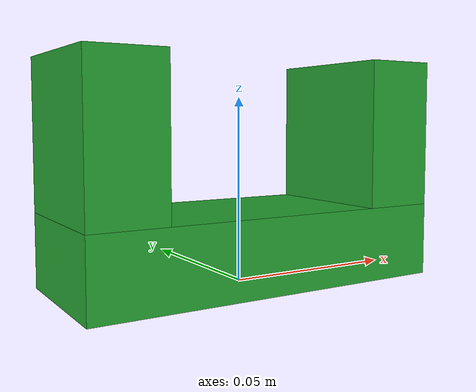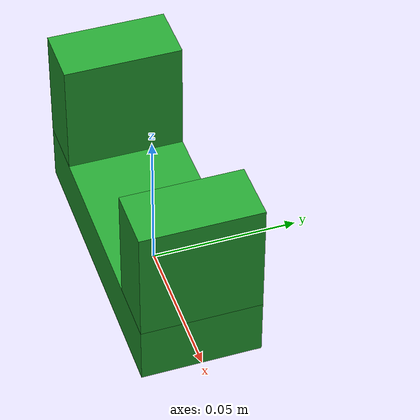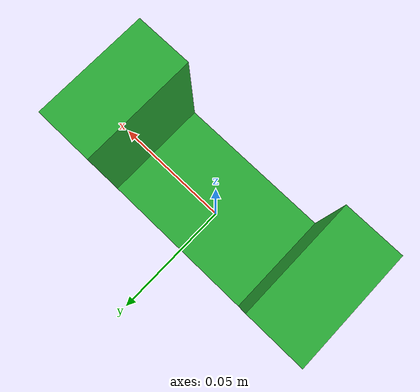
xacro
<?xml version="1.0"?>
<robot xmlns:xacro="http://www.ros.org/wiki/xacro">

    <link name="gripper_base_link">
        <visual>
            <geometry>
                <box size="0.1 0.04 0.02"/>
            </geometry>
            <origin xyz="0 0 0.01" rpy="0 0 0"/>
            <material name="dark_green"/>
        </visual>
        <collision>
            <geometry>
                <box size="0.1 0.04 0.02"/>
            </geometry>
            <origin xyz="0 0 0.01" rpy="0 0 0"/>
            <material name="dark_green"/>
        </collision>
    </link>
    <link name="gripper_left_finger_link">
        <visual>
            <geometry>
                <box size="0.02 0.04 0.04"/>
            </geometry>
            <origin xyz="0 0 0.02" rpy="0 0 0"/>
            <material name="dark_green"/>
        </visual>
       <collision>
            <geometry>
                <box size="0.02 0.04 0.04"/>
            </geometry>
            <origin xyz="0 0 0.02" rpy="0 0 0"/>
            <material name="dark_green"/>
        </collision>
    </link>
    <link name="gripper_right_finger_link">
        <visual>
            <geometry>
                <box size="0.02 0.04 0.04"/>
            </geometry>
            <origin xyz="0 0 0.02" rpy="0 0 0"/>
            <material name="dark_green"/>
        </visual>
       <collision>
            <geometry>
                <box size="0.02 0.04 0.04"/>
            </geometry>
            <origin xyz="0 0 0.02" rpy="0 0 0"/>
            <material name="dark_green"/>
        </collision>
    </link>
    <joint name="gripper_left_finger_joint" type="prismatic">
        <parent link="gripper_base_link"/>
        <child link="gripper_left_finger_link"/>
        <origin xyz="-0.04 0 0.02" rpy="0 0 0"/>
        <axis xyz="1 0 0"/>
        <limit effort="1000.0" velocity="1.0" lower="0.0" upper="0.03"/>
    </joint>
    <joint name="gripper_right_finger_joint" type="prismatic">
        <parent link="gripper_base_link"/>
        <child link="gripper_right_finger_link"/>
        <origin xyz="0.04 0 0.02" rpy="0 0 0"/>
        <axis xyz="1 0 0"/>
        <mimic joint="gripper_left_finger_joint" multiplier="-1.0"/>
        <limit effort="1000.0" velocity="1.0" lower="-0.03" upper="0"/>
    </joint>

</robot>
